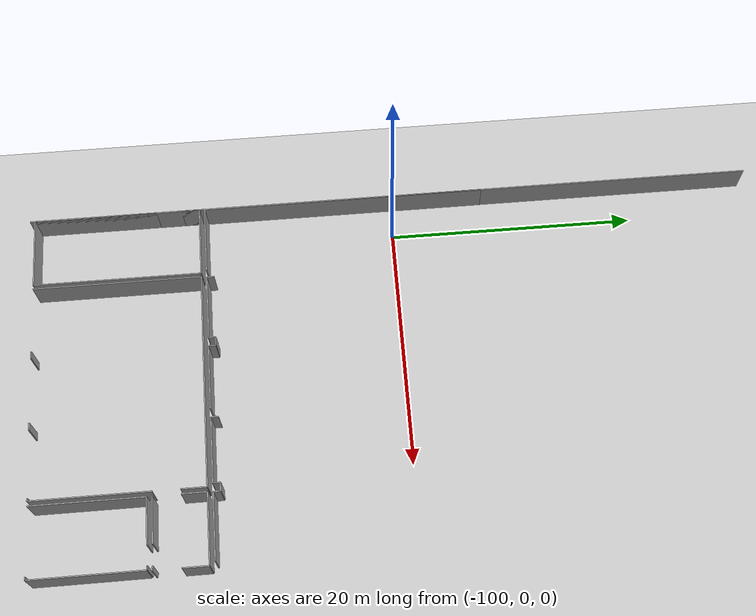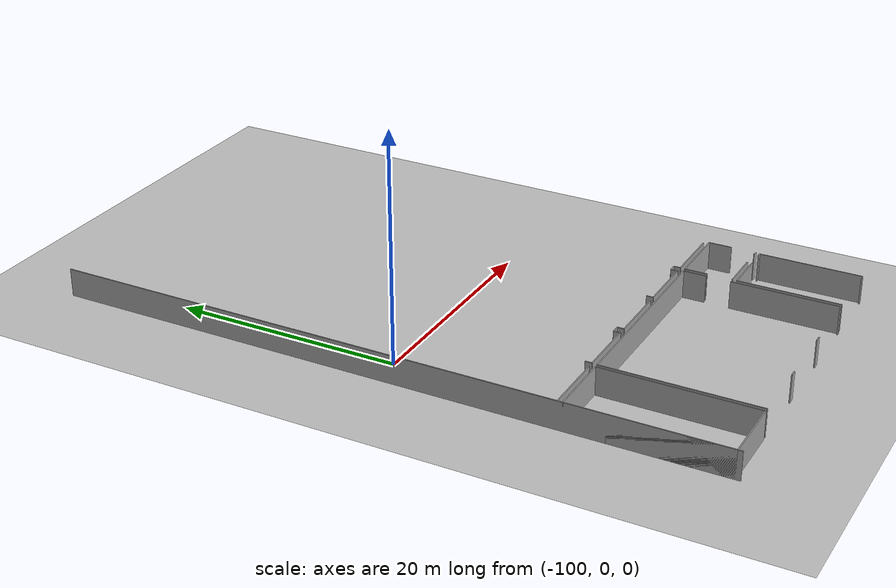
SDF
<sdf version="1.6">
 <world name="default">
  <model name="ground_plane">
   <static>1</static>
   <link name="link">
    <collision name="collision">
     <geometry><plane><normal>0 0 1</normal><size>100 100</size></plane></geometry>
     <surface><friction><ode><mu>100</mu><mu2>50</mu2></ode></friction></surface>
    </collision>
    <visual name="visual">
     <cast_shadows>0</cast_shadows>
     <geometry><plane><normal>0 0 1</normal><size>100 100</size></plane></geometry>
     <material>
      <script><uri>file://media/materials/scripts/gazebo.material</uri><name>Gazebo/Grey</name></script>
     </material>
    </visual>
   </link>
  </model>
  <model name="50010535_PLAN2">
   <static>1</static>
   <link name="Wall_92">
    <collision name="Wall_92_Collision">
     <geometry><box><size>5.3175606564 0.1 2.5</size></box></geometry>
     <pose>2.6587803282 0 1.25 0 0 0</pose>
    </collision>
    <visual name="Wall_92_Visual">
     <pose>2.6587803282 0 1.25 0 0 0</pose>
     <geometry><box><size>5.3175606564 0.1 2.5</size></box></geometry>
     <material>
      <script><uri>file://media/materials/scripts/gazebo.material</uri><name>Gazebo/Grey</name></script>
      <ambient>1 1 1 1</ambient>
     </material>
    </visual>
    <pose>29.5773524012 -45.1655686359 0 0 0 3.14159265359</pose>
   </link>
   <link name="Wall_93">
    <collision name="Wall_93_Collision">
     <geometry><box><size>0.571272466217 0.1 2.5</size></box></geometry>
     <pose>0.285636233109 0 1.25 0 0 0</pose>
    </collision>
    <visual name="Wall_93_Visual">
     <pose>0.285636233109 0 1.25 0 0 0</pose>
     <geometry><box><size>0.571272466217 0.1 2.5</size></box></geometry>
     <material>
      <script><uri>file://media/materials/scripts/gazebo.material</uri><name>Gazebo/Grey</name></script>
      <ambient>1 1 1 1</ambient>
     </material>
    </visual>
    <pose>24.2597917448 -45.1655686359 0 0 0 1.57079632679</pose>
   </link>
   <link name="Wall_94">
    <collision name="Wall_94_Collision">
     <geometry><box><size>0.69198172843 0.1 2.5</size></box></geometry>
     <pose>0.345990864215 0 1.25 0 0 0</pose>
    </collision>
    <visual name="Wall_94_Visual">
     <pose>0.345990864215 0 1.25 0 0 0</pose>
     <geometry><box><size>0.69198172843 0.1 2.5</size></box></geometry>
     <material>
      <script><uri>file://media/materials/scripts/gazebo.material</uri><name>Gazebo/Grey</name></script>
      <ambient>1 1 1 1</ambient>
     </material>
    </visual>
    <pose>24.2597917448 -44.5942961697 0 0 0 3.14159265359</pose>
   </link>
   <link name="Wall_95">
    <collision name="Wall_95_Collision">
     <geometry><box><size>0.582199831007 0.1 2.5</size></box></geometry>
     <pose>0.291099915504 0 1.25 0 0 0</pose>
    </collision>
    <visual name="Wall_95_Visual">
     <pose>0.291099915504 0 1.25 0 0 0</pose>
     <geometry><box><size>0.582199831007 0.1 2.5</size></box></geometry>
     <material>
      <script><uri>file://media/materials/scripts/gazebo.material</uri><name>Gazebo/Grey</name></script>
      <ambient>1 1 1 1</ambient>
     </material>
    </visual>
    <pose>23.5678100163 -44.5942961697 0 0 0 -1.57079632679</pose>
   </link>
   <link name="Wall_96">
    <collision name="Wall_96_Collision">
     <geometry><box><size>5.29570592682 0.1 2.5</size></box></geometry>
     <pose>2.64785296341 0 1.25 0 0 0</pose>
    </collision>
    <visual name="Wall_96_Visual">
     <pose>2.64785296341 0 1.25 0 0 0</pose>
     <geometry><box><size>5.29570592682 0.1 2.5</size></box></geometry>
     <material>
      <script><uri>file://media/materials/scripts/gazebo.material</uri><name>Gazebo/Grey</name></script>
      <ambient>1 1 1 1</ambient>
     </material>
    </visual>
    <pose>23.5678100163 -45.1764960007 0 0 0 3.14159265359</pose>
   </link>
   <link name="Wall_97">
    <collision name="Wall_97_Collision">
     <geometry><box><size>0.598717940573 0.1 2.5</size></box></geometry>
     <pose>0.299358970286 0 1.25 0 0 0</pose>
    </collision>
    <visual name="Wall_97_Visual">
     <pose>0.299358970286 0 1.25 0 0 0</pose>
     <geometry><box><size>0.598717940573 0.1 2.5</size></box></geometry>
     <material>
      <script><uri>file://media/materials/scripts/gazebo.material</uri><name>Gazebo/Grey</name></script>
      <ambient>1 1 1 1</ambient>
     </material>
    </visual>
    <pose>18.2721040895 -45.1764960007 0 0 0 1.57079632679</pose>
   </link>
   <link name="Wall_100">
    <collision name="Wall_100_Collision">
     <geometry><box><size>5.29596005159 0.1 2.5</size></box></geometry>
     <pose>2.64798002579 0 1.25 0 0 0</pose>
    </collision>
    <visual name="Wall_100_Visual">
     <pose>2.64798002579 0 1.25 0 0 0</pose>
     <geometry><box><size>5.29596005159 0.1 2.5</size></box></geometry>
     <material>
      <script><uri>file://media/materials/scripts/gazebo.material</uri><name>Gazebo/Grey</name></script>
      <ambient>1 1 1 1</ambient>
     </material>
    </visual>
    <pose>17.5765646144 -45.187931615 0 0 0 3.14159265359</pose>
   </link>
   <link name="Wall_101">
    <collision name="Wall_101_Collision">
     <geometry><box><size>0.584232829107 0.1 2.5</size></box></geometry>
     <pose>0.292116414554 0 1.25 0 0 0</pose>
    </collision>
    <visual name="Wall_101_Visual">
     <pose>0.292116414554 0 1.25 0 0 0</pose>
     <geometry><box><size>0.584232829107 0.1 2.5</size></box></geometry>
     <material>
      <script><uri>file://media/materials/scripts/gazebo.material</uri><name>Gazebo/Grey</name></script>
      <ambient>1 1 1 1</ambient>
     </material>
    </visual>
    <pose>12.2806045628 -45.187931615 0 0 0 1.57079632679</pose>
   </link>
   <link name="Wall_102">
    <collision name="Wall_102_Collision">
     <geometry><box><size>0.71993545231 0.1 2.5</size></box></geometry>
     <pose>0.359967726155 0 1.25 0 0 0</pose>
    </collision>
    <visual name="Wall_102_Visual">
     <pose>0.359967726155 0 1.25 0 0 0</pose>
     <geometry><box><size>0.71993545231 0.1 2.5</size></box></geometry>
     <material>
      <script><uri>file://media/materials/scripts/gazebo.material</uri><name>Gazebo/Grey</name></script>
      <ambient>1 1 1 1</ambient>
     </material>
    </visual>
    <pose>12.2806045628 -44.6036987859 0 0 0 3.14159265359</pose>
   </link>
   <link name="Wall_103">
    <collision name="Wall_103_Collision">
     <geometry><box><size>0.555770855702 0.1 2.5</size></box></geometry>
     <pose>0.277885427851 0 1.25 0 0 0</pose>
    </collision>
    <visual name="Wall_103_Visual">
     <pose>0.277885427851 0 1.25 0 0 0</pose>
     <geometry><box><size>0.555770855702 0.1 2.5</size></box></geometry>
     <material>
      <script><uri>file://media/materials/scripts/gazebo.material</uri><name>Gazebo/Grey</name></script>
      <ambient>1 1 1 1</ambient>
     </material>
    </visual>
    <pose>11.5606691105 -44.6036987859 0 0 0 -1.57079632679</pose>
   </link>
   <link name="Wall_104">
    <collision name="Wall_104_Collision">
     <geometry><box><size>5.31933952974 0.1 2.5</size></box></geometry>
     <pose>2.65966976487 0 1.25 0 0 0</pose>
    </collision>
    <visual name="Wall_104_Visual">
     <pose>2.65966976487 0 1.25 0 0 0</pose>
     <geometry><box><size>5.31933952974 0.1 2.5</size></box></geometry>
     <material>
      <script><uri>file://media/materials/scripts/gazebo.material</uri><name>Gazebo/Grey</name></script>
      <ambient>1 1 1 1</ambient>
     </material>
    </visual>
    <pose>11.5606691105 -45.1594696416 0 0 0 3.14159265359</pose>
   </link>
   <link name="Wall_105">
    <collision name="Wall_105_Collision">
     <geometry><box><size>0.593889570084 0.1 2.5</size></box></geometry>
     <pose>0.296944785042 0 1.25 0 0 0</pose>
    </collision>
    <visual name="Wall_105_Visual">
     <pose>0.296944785042 0 1.25 0 0 0</pose>
     <geometry><box><size>0.593889570084 0.1 2.5</size></box></geometry>
     <material>
      <script><uri>file://media/materials/scripts/gazebo.material</uri><name>Gazebo/Grey</name></script>
      <ambient>1 1 1 1</ambient>
     </material>
    </visual>
    <pose>6.24132958076 -45.1594696416 0 0 0 1.57079632679</pose>
   </link>
   <link name="Wall_108">
    <collision name="Wall_108_Collision">
     <geometry><box><size>5.55908083073 0.1 2.5</size></box></geometry>
     <pose>2.77954041537 0 1.25 0 0 0</pose>
    </collision>
    <visual name="Wall_108_Visual">
     <pose>2.77954041537 0 1.25 0 0 0</pose>
     <geometry><box><size>5.55908083073 0.1 2.5</size></box></geometry>
     <material>
      <script><uri>file://media/materials/scripts/gazebo.material</uri><name>Gazebo/Grey</name></script>
      <ambient>1 1 1 1</ambient>
     </material>
    </visual>
    <pose>5.57171083143 -45.1721758797 0 0 0 3.14159265359</pose>
   </link>
   <link name="Wall_109">
    <collision name="Wall_109_Collision">
     <geometry><box><size>23.0176044929 0.1 2.5</size></box></geometry>
     <pose>11.5088022465 0 1.25 0 0 0</pose>
    </collision>
    <visual name="Wall_109_Visual">
     <pose>11.5088022465 0 1.25 0 0 0</pose>
     <geometry><box><size>23.0176044929 0.1 2.5</size></box></geometry>
     <material>
      <script><uri>file://media/materials/scripts/gazebo.material</uri><name>Gazebo/Grey</name></script>
      <ambient>1 1 1 1</ambient>
     </material>
    </visual>
    <pose>0.0126300006988 -45.1721758797 0 0 0 1.57079632679</pose>
   </link>
   <link name="Wall_853">
    <collision name="Wall_853_Collision">
     <geometry><box><size>2.03401459947 0.1 2.5</size></box></geometry>
     <pose>1.01700729973 0 1.25 0 0 0</pose>
    </collision>
    <visual name="Wall_853_Visual">
     <pose>1.01700729973 0 1.25 0 0 0</pose>
     <geometry><box><size>2.03401459947 0.1 2.5</size></box></geometry>
     <material>
      <script><uri>file://media/materials/scripts/gazebo.material</uri><name>Gazebo/Grey</name></script>
      <ambient>1 1 1 1</ambient>
     </material>
    </visual>
    <pose>29.9059357191 -47.6232092146 0 0 0 1.57079632679</pose>
   </link>
   <link name="Wall_854">
    <collision name="Wall_854_Collision">
     <geometry><box><size>5.67308119921 0.1 2.5</size></box></geometry>
     <pose>2.83654059961 0 1.25 0 0 0</pose>
    </collision>
    <visual name="Wall_854_Visual">
     <pose>2.83654059961 0 1.25 0 0 0</pose>
     <geometry><box><size>5.67308119921 0.1 2.5</size></box></geometry>
     <material>
      <script><uri>file://media/materials/scripts/gazebo.material</uri><name>Gazebo/Grey</name></script>
      <ambient>1 1 1 1</ambient>
     </material>
    </visual>
    <pose>29.9059357191 -45.5891946151 0 0 0 3.14159265359</pose>
   </link>
   <link name="Wall_855">
    <collision name="Wall_855_Collision">
     <geometry><box><size>1.98344377172 0.1 2.5</size></box></geometry>
     <pose>0.99172188586 0 1.25 0 0 0</pose>
    </collision>
    <visual name="Wall_855_Visual">
     <pose>0.99172188586 0 1.25 0 0 0</pose>
     <geometry><box><size>1.98344377172 0.1 2.5</size></box></geometry>
     <material>
      <script><uri>file://media/materials/scripts/gazebo.material</uri><name>Gazebo/Grey</name></script>
      <ambient>1 1 1 1</ambient>
     </material>
    </visual>
    <pose>24.2328545199 -45.5891946151 0 0 0 -1.57079632679</pose>
   </link>
   <link name="Wall_856">
    <collision name="Wall_856_Collision">
     <geometry><box><size>3.66879919697 0.1 2.5</size></box></geometry>
     <pose>1.83439959848 0 1.25 0 0 0</pose>
    </collision>
    <visual name="Wall_856_Visual">
     <pose>1.83439959848 0 1.25 0 0 0</pose>
     <geometry><box><size>3.66879919697 0.1 2.5</size></box></geometry>
     <material>
      <script><uri>file://media/materials/scripts/gazebo.material</uri><name>Gazebo/Grey</name></script>
      <ambient>1 1 1 1</ambient>
     </material>
    </visual>
    <pose>24.2328545199 -49.7736129553 0 0 0 0.0</pose>
   </link>
   <link name="Wall_857">
    <collision name="Wall_857_Collision">
     <geometry><box><size>0.353771243101 0.1 2.5</size></box></geometry>
     <pose>0.176885621551 0 1.25 0 0 0</pose>
    </collision>
    <visual name="Wall_857_Visual">
     <pose>0.176885621551 0 1.25 0 0 0</pose>
     <geometry><box><size>0.353771243101 0.1 2.5</size></box></geometry>
     <material>
      <script><uri>file://media/materials/scripts/gazebo.material</uri><name>Gazebo/Grey</name></script>
      <ambient>1 1 1 1</ambient>
     </material>
    </visual>
    <pose>29.5598177925 -49.7736129553 0 0 0 -0.208384128533</pose>
   </link>
   <link name="Wall_858">
    <collision name="Wall_858_Collision">
     <geometry><box><size>0.265306252104 0.1 2.5</size></box></geometry>
     <pose>0.132653126052 0 1.25 0 0 0</pose>
    </collision>
    <visual name="Wall_858_Visual">
     <pose>0.132653126052 0 1.25 0 0 0</pose>
     <geometry><box><size>0.265306252104 0.1 2.5</size></box></geometry>
     <material>
      <script><uri>file://media/materials/scripts/gazebo.material</uri><name>Gazebo/Grey</name></script>
      <ambient>1 1 1 1</ambient>
     </material>
    </visual>
    <pose>29.8805232429 -59.1584404363 0 0 0 3.14159265359</pose>
   </link>
   <link name="Wall_859">
    <collision name="Wall_859_Collision">
     <geometry><box><size>8.97390774 0.1 2.5</size></box></geometry>
     <pose>4.48695387 0 1.25 0 0 0</pose>
    </collision>
    <visual name="Wall_859_Visual">
     <pose>4.48695387 0 1.25 0 0 0</pose>
     <geometry><box><size>8.97390774 0.1 2.5</size></box></geometry>
     <material>
      <script><uri>file://media/materials/scripts/gazebo.material</uri><name>Gazebo/Grey</name></script>
      <ambient>1 1 1 1</ambient>
     </material>
    </visual>
    <pose>24.2455607581 -59.1584404363 0 0 0 1.57079632679</pose>
   </link>
   <link name="Wall_860">
    <collision name="Wall_860_Collision">
     <geometry><box><size>3.7038684142 0.1 2.5</size></box></geometry>
     <pose>1.8519342071 0 1.25 0 0 0</pose>
    </collision>
    <visual name="Wall_860_Visual">
     <pose>1.8519342071 0 1.25 0 0 0</pose>
     <geometry><box><size>3.7038684142 0.1 2.5</size></box></geometry>
     <material>
      <script><uri>file://media/materials/scripts/gazebo.material</uri><name>Gazebo/Grey</name></script>
      <ambient>1 1 1 1</ambient>
     </material>
    </visual>
    <pose>24.2455607581 -50.1845326963 0 0 0 0.0</pose>
   </link>
   <link name="Wall_861">
    <collision name="Wall_861_Collision">
     <geometry><box><size>0.348659174222 0.1 2.5</size></box></geometry>
     <pose>0.174329587111 0 1.25 0 0 0</pose>
    </collision>
    <visual name="Wall_861_Visual">
     <pose>0.174329587111 0 1.25 0 0 0</pose>
     <geometry><box><size>0.348659174222 0.1 2.5</size></box></geometry>
     <material>
      <script><uri>file://media/materials/scripts/gazebo.material</uri><name>Gazebo/Grey</name></script>
      <ambient>1 1 1 1</ambient>
     </material>
    </visual>
    <pose>29.5054350934 -50.1845326963 0 0 0 0.0</pose>
   </link>
   <link name="Wall_862">
    <collision name="Wall_862_Collision">
     <geometry><box><size>8.97394665779 0.1 2.5</size></box></geometry>
     <pose>4.48697332889 0 1.25 0 0 0</pose>
    </collision>
    <visual name="Wall_862_Visual">
     <pose>4.48697332889 0 1.25 0 0 0</pose>
     <geometry><box><size>8.97394665779 0.1 2.5</size></box></geometry>
     <material>
      <script><uri>file://media/materials/scripts/gazebo.material</uri><name>Gazebo/Grey</name></script>
      <ambient>1 1 1 1</ambient>
     </material>
    </visual>
    <pose>29.8540942676 -50.1845326963 0 0 0 -1.56785124427</pose>
   </link>
   <link name="Wall_863">
    <collision name="Wall_863_Collision">
     <geometry><box><size>0.241672649187 0.1 2.5</size></box></geometry>
     <pose>0.120836324594 0 1.25 0 0 0</pose>
    </collision>
    <visual name="Wall_863_Visual">
     <pose>0.120836324594 0 1.25 0 0 0</pose>
     <geometry><box><size>0.241672649187 0.1 2.5</size></box></geometry>
     <material>
      <script><uri>file://media/materials/scripts/gazebo.material</uri><name>Gazebo/Grey</name></script>
      <ambient>1 1 1 1</ambient>
     </material>
    </visual>
    <pose>23.8643736142 -59.1622523078 0 0 0 3.14159265359</pose>
   </link>
   <link name="Wall_864">
    <collision name="Wall_864_Collision">
     <geometry><box><size>0.615236050139 0.1 2.5</size></box></geometry>
     <pose>0.307618025069 0 1.25 0 0 0</pose>
    </collision>
    <visual name="Wall_864_Visual">
     <pose>0.307618025069 0 1.25 0 0 0</pose>
     <geometry><box><size>0.615236050139 0.1 2.5</size></box></geometry>
     <material>
      <script><uri>file://media/materials/scripts/gazebo.material</uri><name>Gazebo/Grey</name></script>
      <ambient>1 1 1 1</ambient>
     </material>
    </visual>
    <pose>18.2172131408 -59.1622523078 0 0 0 3.14159265359</pose>
   </link>
   <link name="Wall_865">
    <collision name="Wall_865_Collision">
     <geometry><box><size>0.604054560587 0.1 2.5</size></box></geometry>
     <pose>0.302027280293 0 1.25 0 0 0</pose>
    </collision>
    <visual name="Wall_865_Visual">
     <pose>0.302027280293 0 1.25 0 0 0</pose>
     <geometry><box><size>0.604054560587 0.1 2.5</size></box></geometry>
     <material>
      <script><uri>file://media/materials/scripts/gazebo.material</uri><name>Gazebo/Grey</name></script>
      <ambient>1 1 1 1</ambient>
     </material>
    </visual>
    <pose>12.2295254855 -59.1622523078 0 0 0 3.14159265359</pose>
   </link>
   <link name="Wall_866">
    <collision name="Wall_866_Collision">
     <geometry><box><size>13.5573019574 0.1 2.5</size></box></geometry>
     <pose>6.7786509787 0 1.25 0 0 0</pose>
    </collision>
    <visual name="Wall_866_Visual">
     <pose>6.7786509787 0 1.25 0 0 0</pose>
     <geometry><box><size>13.5573019574 0.1 2.5</size></box></geometry>
     <material>
      <script><uri>file://media/materials/scripts/gazebo.material</uri><name>Gazebo/Grey</name></script>
      <ambient>1 1 1 1</ambient>
     </material>
    </visual>
    <pose>6.16509215199 -59.1622523078 0 0 0 1.57079632679</pose>
   </link>
   <link name="Wall_867">
    <collision name="Wall_867_Collision">
     <geometry><box><size>17.6858128498 0.1 2.5</size></box></geometry>
     <pose>8.84290642491 0 1.25 0 0 0</pose>
    </collision>
    <visual name="Wall_867_Visual">
     <pose>8.84290642491 0 1.25 0 0 0</pose>
     <geometry><box><size>17.6858128498 0.1 2.5</size></box></geometry>
     <material>
      <script><uri>file://media/materials/scripts/gazebo.material</uri><name>Gazebo/Grey</name></script>
      <ambient>1 1 1 1</ambient>
     </material>
    </visual>
    <pose>6.16509215199 -45.6049503504 0 0 0 0.0</pose>
   </link>
   <link name="Wall_868">
    <collision name="Wall_868_Collision">
     <geometry><box><size>1.99996188129 0.1 2.5</size></box></geometry>
     <pose>0.999980940643 0 1.25 0 0 0</pose>
    </collision>
    <visual name="Wall_868_Visual">
     <pose>0.999980940643 0 1.25 0 0 0</pose>
     <geometry><box><size>1.99996188129 0.1 2.5</size></box></geometry>
     <material>
      <script><uri>file://media/materials/scripts/gazebo.material</uri><name>Gazebo/Grey</name></script>
      <ambient>1 1 1 1</ambient>
     </material>
    </visual>
    <pose>23.8509050018 -45.6049503504 0 0 0 -1.57079632679</pose>
   </link>
   <link name="Wall_869">
    <collision name="Wall_869_Collision">
     <geometry><box><size>9.39754337083 0.1 2.5</size></box></geometry>
     <pose>4.69877168542 0 1.25 0 0 0</pose>
    </collision>
    <visual name="Wall_869_Visual">
     <pose>4.69877168542 0 1.25 0 0 0</pose>
     <geometry><box><size>9.39754337083 0.1 2.5</size></box></geometry>
     <material>
      <script><uri>file://media/materials/scripts/gazebo.material</uri><name>Gazebo/Grey</name></script>
      <ambient>1 1 1 1</ambient>
     </material>
    </visual>
    <pose>23.8509050018 -49.7647185886 0 0 0 -1.56936312064</pose>
   </link>
   <link name="Wall_870">
    <collision name="Wall_870_Collision">
     <geometry><box><size>5.82456497017 0.1 2.5</size></box></geometry>
     <pose>2.91228248509 0 1.25 0 0 0</pose>
    </collision>
    <visual name="Wall_870_Visual">
     <pose>2.91228248509 0 1.25 0 0 0</pose>
     <geometry><box><size>5.82456497017 0.1 2.5</size></box></geometry>
     <material>
      <script><uri>file://media/materials/scripts/gazebo.material</uri><name>Gazebo/Grey</name></script>
      <ambient>1 1 1 1</ambient>
     </material>
    </visual>
    <pose>5.82456497017 -59.1332820848 0 0 0 3.14159265359</pose>
   </link>
   <link name="Wall_871">
    <collision name="Wall_871_Collision">
     <geometry><box><size>10.0076872741 0.1 2.5</size></box></geometry>
     <pose>5.00384363703 0 1.25 0 0 0</pose>
    </collision>
    <visual name="Wall_871_Visual">
     <pose>5.00384363703 0 1.25 0 0 0</pose>
     <geometry><box><size>10.0076872741 0.1 2.5</size></box></geometry>
     <material>
      <script><uri>file://media/materials/scripts/gazebo.material</uri><name>Gazebo/Grey</name></script>
      <ambient>1 1 1 1</ambient>
     </material>
    </visual>
    <pose>0.0 -59.1332820848 0 0 0 1.57079632679</pose>
   </link>
   <link name="Wall_872">
    <collision name="Wall_872_Collision">
     <geometry><box><size>1.45308539227 0.1 2.5</size></box></geometry>
     <pose>0.726542696137 0 1.25 0 0 0</pose>
    </collision>
    <visual name="Wall_872_Visual">
     <pose>0.726542696137 0 1.25 0 0 0</pose>
     <geometry><box><size>1.45308539227 0.1 2.5</size></box></geometry>
     <material>
      <script><uri>file://media/materials/scripts/gazebo.material</uri><name>Gazebo/Grey</name></script>
      <ambient>1 1 1 1</ambient>
     </material>
    </visual>
    <pose>0.0 -47.0623558636 0 0 0 1.57079632679</pose>
   </link>
   <link name="Wall_873">
    <collision name="Wall_873_Collision">
     <geometry><box><size>5.85099394548 0.1 2.5</size></box></geometry>
     <pose>2.92549697274 0 1.25 0 0 0</pose>
    </collision>
    <visual name="Wall_873_Visual">
     <pose>2.92549697274 0 1.25 0 0 0</pose>
     <geometry><box><size>5.85099394548 0.1 2.5</size></box></geometry>
     <material>
      <script><uri>file://media/materials/scripts/gazebo.material</uri><name>Gazebo/Grey</name></script>
      <ambient>1 1 1 1</ambient>
     </material>
    </visual>
    <pose>0.0 -45.6092704713 0 0 0 0.0</pose>
   </link>
   <link name="Wall_874">
    <collision name="Wall_874_Collision">
     <geometry><box><size>13.5240374376 0.1 2.5</size></box></geometry>
     <pose>6.76201871879 0 1.25 0 0 0</pose>
    </collision>
    <visual name="Wall_874_Visual">
     <pose>6.76201871879 0 1.25 0 0 0</pose>
     <geometry><box><size>13.5240374376 0.1 2.5</size></box></geometry>
     <material>
      <script><uri>file://media/materials/scripts/gazebo.material</uri><name>Gazebo/Grey</name></script>
      <ambient>1 1 1 1</ambient>
     </material>
    </visual>
    <pose>5.85099394548 -45.6092704713 0 0 0 -1.57275055032</pose>
   </link>
   <link name="Wall_883">
    <collision name="Wall_883_Collision">
     <geometry><box><size>59.5373404573 0.1 2.5</size></box></geometry>
     <pose>29.7686702286 0 1.25 0 0 0</pose>
    </collision>
    <visual name="Wall_883_Visual">
     <pose>29.7686702286 0 1.25 0 0 0</pose>
     <geometry><box><size>59.5373404573 0.1 2.5</size></box></geometry>
     <material>
      <script><uri>file://media/materials/scripts/gazebo.material</uri><name>Gazebo/Grey</name></script>
      <ambient>1 1 1 1</ambient>
     </material>
    </visual>
    <pose>0.0 -59.5373404573 0 0 0 1.57079632679</pose>
   </link>
   <pose>-102.6 29.7873404573 0 0 0 0</pose>
  </model>
 </world>
</sdf>
